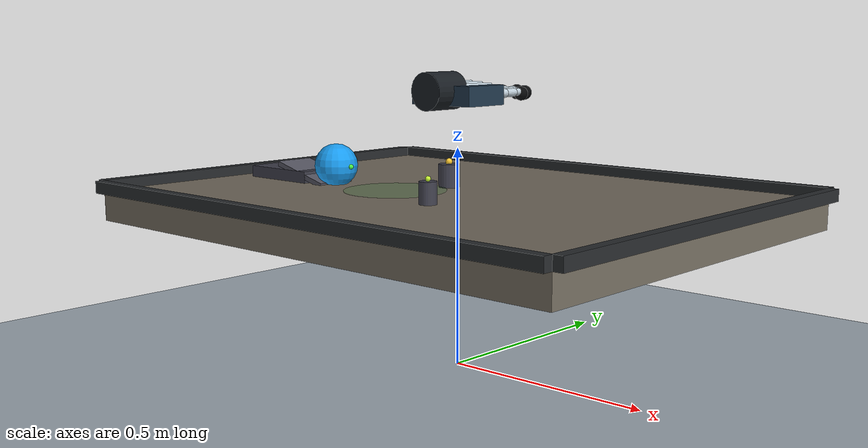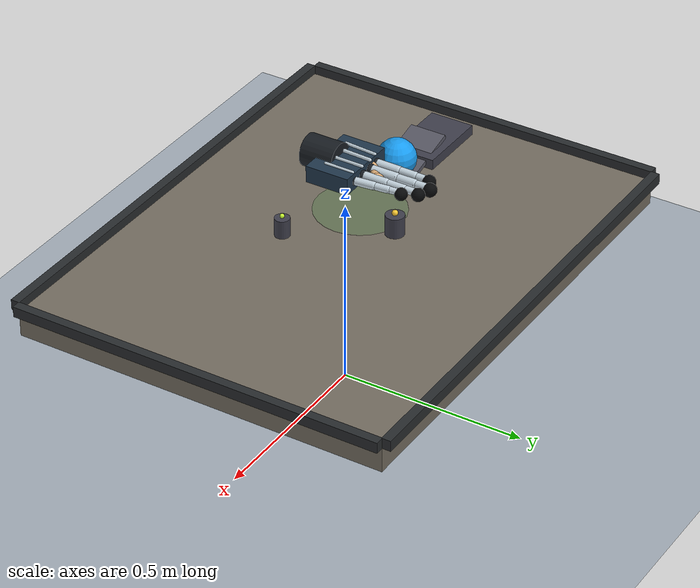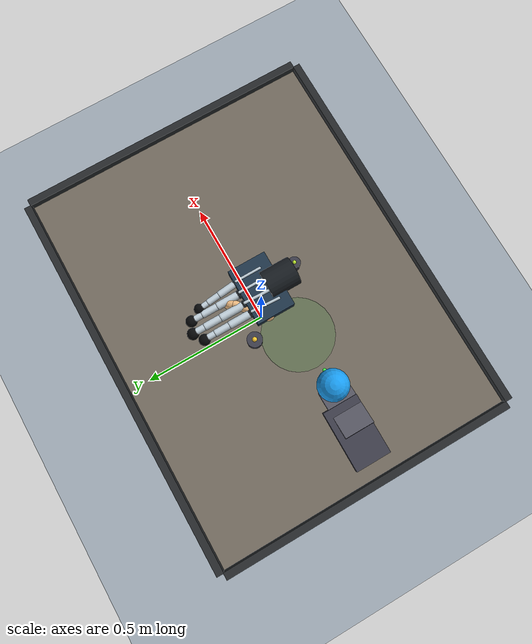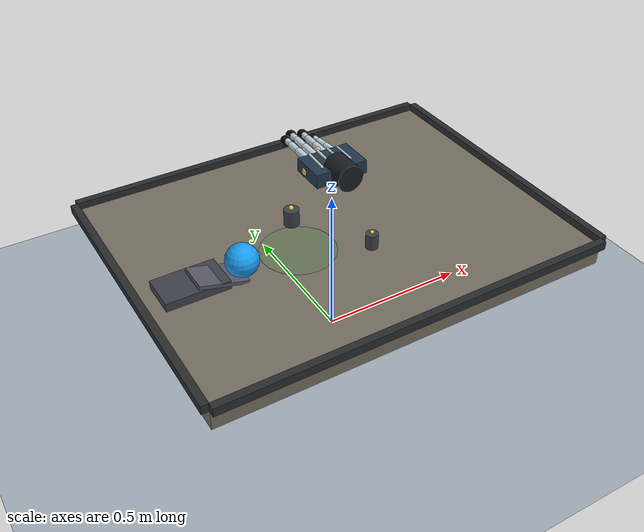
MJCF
<mujoco model="ball_catch">
  <!--
    Ball Catch - 接球任务专用场景
    特点：
    - 五指灵巧手
    - 发射器基座
    - 扩大的滚动区域
    - 优化滚动的摩擦参数
  -->

  <compiler angle="degree" autolimits="true"/>
  <option timestep="0.01" integrator="RK4" gravity="0 0 -9.81"/>

  <visual>
    <global offwidth="1280" offheight="720"/>
    <quality shadowsize="2048"/>
  </visual>

  <default>
    <geom friction="0.8 0.03 0.003" solimp="0.9 0.95 0.001" solref="0.02 1"/>
    <joint damping="5" armature="0.01"/>
  </default>

  <asset>
    <texture name="grid_tex" type="2d" builtin="checker" rgb1="0.84 0.86 0.88" rgb2="0.68 0.72 0.76" width="256" height="256"/>
    <material name="floor_mat" texture="grid_tex" texrepeat="5 5" rgba="0.84 0.86 0.88 1"/>
    <material name="table_mat" rgba="0.46 0.43 0.38 1"/>
    <material name="palm_mat" rgba="0.13 0.22 0.30 1"/>
    <material name="finger_mat" rgba="0.78 0.84 0.88 1"/>
    <material name="thumb_mat" rgba="0.92 0.72 0.50 1"/>
    <material name="finger_joint_mat" rgba="0.10 0.12 0.14 1"/>
    <material name="pad_mat" rgba="0.03 0.035 0.04 1"/>
    <material name="sphere_mat" rgba="0.10 0.62 0.95 1"/>
    <material name="launcher_mat" rgba="0.25 0.25 0.30 1"/>
    <material name="launcher_ramp_mat" rgba="0.35 0.35 0.40 1"/>
    <material name="trigger_mat" rgba="1.00 0.20 0.20 1"/>
  </asset>

  <worldbody>
    <!-- 地面 -->
    <geom name="floor" type="plane" size="2.0 2.0 0.05" material="floor_mat"/>

    <!-- 灯光 -->
    <light name="key_light" pos="0.0 -1.2 1.8" dir="0.0 0.4 -1" diffuse="0.95 0.95 0.92"/>
    <light name="fill_light" pos="-1.0 1.1 1.5" dir="0.5 -0.4 -1" diffuse="0.35 0.40 0.48"/>

    <!-- 摄像头 -->
    <camera name="front_camera" pos="0.36 -0.84 0.70" xyaxes="0.94 0.34 0 -0.16 0.45 0.88" fovy="36"/>
    <camera name="side_camera" pos="-0.50 -0.60 0.65" xyaxes="0.90 0.40 0.15 -0.12 0.42 0.90" fovy="32"/>
    <camera name="top_camera" pos="0.0 0.0 1.32" xyaxes="1 0 0 0 1 0" fovy="42"/>

    <!-- 桌面 - 扩大尺寸以容纳滚动 -->
    <body name="table" pos="0 0 0.36">
      <geom name="table_top" type="box" size="0.65 0.50 0.035" material="table_mat"/>
      <geom name="table_edge_front" type="box" pos="0 -0.51 0.045" size="0.65 0.012 0.014" rgba="0.16 0.17 0.18 1"/>
      <geom name="table_edge_back" type="box" pos="0 0.51 0.045" size="0.65 0.012 0.014" rgba="0.16 0.17 0.18 1"/>
      <geom name="table_edge_left" type="box" pos="-0.66 0 0.045" size="0.012 0.50 0.014" rgba="0.16 0.17 0.18 1"/>
      <geom name="table_edge_right" type="box" pos="0.66 0 0.045" size="0.012 0.50 0.014" rgba="0.16 0.17 0.18 1"/>
    </body>

    <!-- 球发射器基座 -->
    <body name="ball_launcher" pos="-0.50 -0.05 0.405">
      <geom name="launcher_base" type="box" size="0.10 0.06 0.018" material="launcher_mat"/>
      <geom name="launcher_ramp" type="box" pos="0.08 -0.01 0.010" euler="0 15 0" size="0.08 0.05 0.006" material="launcher_ramp_mat"/>
      <site name="launcher_trigger" pos="0.16 0 0.028" size="0.010" rgba="1.0 0.3 0.3 1"/>
    </body>

    <!-- 滚动球 - 低摩擦配置 -->
    <body name="sphere_object" pos="-0.34 -0.06 0.440">
      <freejoint name="sphere_object_joint"/>
      <geom name="sphere_object_geom" type="sphere" size="0.052" material="sphere_mat" mass="0.060" friction="0.5 0.015 0.001"/>
      <site name="ball_velocity_marker" pos="0.052 0 0" size="0.006" rgba="0.3 1.0 0.3 1"/>
    </body>

    <!-- 接球区域标记 -->
    <body name="catch_zone" pos="-0.15 -0.05 0.395">
      <geom name="catch_zone_geom" type="cylinder" size="0.12 0.002" rgba="0.20 0.60 0.20 0.15" contype="0" conaffinity="0"/>
    </body>

    <!-- 障碍物 - 球会碰撞并改变方向 -->
    <body name="obstacle_1" pos="-0.10 0.08 0.400">
      <geom name="obstacle_geom" type="cylinder" size="0.025 0.050" material="launcher_mat" friction="0.3 0.01 0.001"/>
      <site name="obstacle_marker" pos="0 0 0.055" size="0.008" rgba="1.0 0.8 0.2 1"/>
    </body>

    <!-- 障碍物2 - 更大范围 -->
    <body name="obstacle_2" pos="0.05 -0.15 0.400">
      <geom name="obstacle_2_geom" type="cylinder" size="0.020 0.045" material="launcher_mat" friction="0.3 0.01 0.001"/>
      <site name="obstacle_2_marker" pos="0 0 0.050" size="0.006" rgba="0.8 1.0 0.2 1"/>
    </body>

    <!-- 五指灵巧手 - 完整结构 -->
    <body name="palm_body" pos="0 0 0.620">
      <!-- 手部滑动关节 -->
      <joint name="hand_x" type="slide" axis="1 0 0" range="-0.40 0.40" damping="8"/>
      <joint name="hand_y" type="slide" axis="0 1 0" range="-0.22 0.34" damping="8"/>
      <joint name="hand_z" type="slide" axis="0 0 1" range="-0.13 0.06" damping="8"/>
      <!-- 手腕旋转关节 -->
      <joint name="wrist_yaw" type="hinge" axis="0 0 1" range="-35 35" damping="5"/>
      <joint name="wrist_pitch" type="hinge" axis="1 0 0" range="-25 25" damping="5"/>
      <joint name="wrist_roll" type="hinge" axis="0 1 0" range="-25 25" damping="5"/>

      <!-- 手掌结构 -->
      <geom name="wrist_mount_geom" type="cylinder" pos="0 -0.060 0.010" euler="90 0 0" size="0.042 0.045" material="finger_joint_mat" contype="0" conaffinity="0"/>
      <geom name="palm_geom" type="box" pos="0 0 0" size="0.085 0.058 0.022" material="palm_mat" contype="0" conaffinity="0"/>
      <geom name="index_metacarpal_rail" type="capsule" fromto="-0.050 -0.028 0.025 -0.045 0.055 0.024" size="0.004" material="finger_mat" contype="0" conaffinity="0"/>
      <geom name="middle_metacarpal_rail" type="capsule" fromto="-0.018 -0.032 0.026 -0.015 0.060 0.025" size="0.0045" material="finger_mat" contype="0" conaffinity="0"/>
      <geom name="ring_metacarpal_rail" type="capsule" fromto="0.018 -0.030 0.025 0.018 0.058 0.024" size="0.004" material="finger_mat" contype="0" conaffinity="0"/>
      <geom name="little_metacarpal_rail" type="capsule" fromto="0.050 -0.024 0.023 0.050 0.052 0.022" size="0.0038" material="finger_mat" contype="0" conaffinity="0"/>
      <site name="palm_center_site" pos="0 0.045 -0.020" size="0.008" rgba="1 0.9 0.2 1"/>

      <!-- 拇指 - 对掌结构 -->
      <body name="thumb_metacarpal" pos="-0.075 0.018 -0.004" euler="0 0 -48">
        <joint name="thumb_cmc_opposition" type="hinge" axis="-1 0 0" range="0 85" damping="4"/>
        <joint name="thumb_cmc_abduction" type="hinge" axis="0 0 1" range="-10 45" damping="4"/>
        <geom name="thumb_cmc_joint_geom" type="sphere" size="0.016" material="thumb_mat" contype="0" conaffinity="0"/>
        <geom name="thumb_proximal_geom" type="capsule" fromto="0 0 0 0 0.045 0" size="0.014" material="thumb_mat" contype="0" conaffinity="0"/>
        <body name="thumb_proximal" pos="0 0.045 0">
          <joint name="thumb_mcp_flexion" type="hinge" axis="-1 0 0" range="0 85" damping="4"/>
          <geom name="thumb_mcp_joint_geom" type="sphere" size="0.014" material="thumb_mat" contype="0" conaffinity="0"/>
          <geom name="thumb_middle_geom" type="capsule" fromto="0 0 0 0 0.039 0" size="0.013" material="thumb_mat" contype="0" conaffinity="0"/>
          <body name="thumb_distal" pos="0 0.039 0">
            <joint name="thumb_ip_flexion" type="hinge" axis="-1 0 0" range="0 80" damping="4"/>
            <geom name="thumb_ip_joint_geom" type="sphere" size="0.012" material="thumb_mat" contype="0" conaffinity="0"/>
            <geom name="thumb_distal_geom" type="capsule" fromto="0 0 0 0 0.028 0" size="0.012" material="thumb_mat" contype="0" conaffinity="0"/>
            <geom name="thumb_tip_pad" type="sphere" pos="0 0.032 -0.004" size="0.019" material="thumb_mat" contype="1" conaffinity="1"/>
            <site name="thumb_tip_site" pos="0 0.034 -0.004" size="0.006" rgba="1 1 1 1"/>
          </body>
        </body>
      </body>

      <!-- 食指 -->
      <body name="index_metacarpal" pos="-0.045 0.058 0.000">
        <joint name="index_mcp_abduction" type="hinge" axis="0 0 1" range="-16 16" damping="4"/>
        <joint name="index_mcp_flexion" type="hinge" axis="-1 0 0" range="0 95" damping="4"/>
        <geom name="index_mcp_joint_geom" type="sphere" size="0.013" material="finger_joint_mat" contype="0" conaffinity="0"/>
        <geom name="index_proximal_geom" type="capsule" fromto="0 0 0 0 0.065 0" size="0.0115" material="finger_mat" contype="0" conaffinity="0"/>
        <body name="index_middle" pos="0 0.065 0">
          <joint name="index_pip_flexion" type="hinge" axis="-1 0 0" range="0 100" damping="4"/>
          <geom name="index_pip_joint_geom" type="sphere" size="0.011" material="finger_joint_mat" contype="0" conaffinity="0"/>
          <geom name="index_middle_geom" type="capsule" fromto="0 0 0 0 0.046 0" size="0.0105" material="finger_mat" contype="0" conaffinity="0"/>
          <body name="index_distal" pos="0 0.046 0">
            <joint name="index_dip_flexion" type="hinge" axis="-1 0 0" range="0 85" damping="4"/>
            <geom name="index_dip_joint_geom" type="sphere" size="0.0095" material="finger_joint_mat" contype="0" conaffinity="0"/>
            <geom name="index_distal_geom" type="capsule" fromto="0 0 0 0 0.033 0" size="0.0095" material="finger_mat" contype="0" conaffinity="0"/>
            <geom name="index_tip_pad" type="sphere" pos="0 0.037 -0.004" size="0.017" material="pad_mat" contype="1" conaffinity="1"/>
            <site name="index_tip_site" pos="0 0.039 -0.004" size="0.006" rgba="1 1 1 1"/>
          </body>
        </body>
      </body>

      <!-- 中指 -->
      <body name="middle_metacarpal" pos="-0.015 0.062 0.000">
        <joint name="middle_mcp_abduction" type="hinge" axis="0 0 1" range="-12 12" damping="4"/>
        <joint name="middle_mcp_flexion" type="hinge" axis="-1 0 0" range="0 100" damping="4"/>
        <geom name="middle_mcp_joint_geom" type="sphere" size="0.0135" material="finger_joint_mat" contype="0" conaffinity="0"/>
        <geom name="middle_proximal_geom" type="capsule" fromto="0 0 0 0 0.072 0" size="0.012" material="finger_mat" contype="0" conaffinity="0"/>
        <body name="middle_middle" pos="0 0.072 0">
          <joint name="middle_pip_flexion" type="hinge" axis="-1 0 0" range="0 105" damping="4"/>
          <geom name="middle_pip_joint_geom" type="sphere" size="0.0115" material="finger_joint_mat" contype="0" conaffinity="0"/>
          <geom name="middle_middle_geom" type="capsule" fromto="0 0 0 0 0.051 0" size="0.011" material="finger_mat" contype="0" conaffinity="0"/>
          <body name="middle_distal" pos="0 0.051 0">
            <joint name="middle_dip_flexion" type="hinge" axis="-1 0 0" range="0 90" damping="4"/>
            <geom name="middle_dip_joint_geom" type="sphere" size="0.010" material="finger_joint_mat" contype="0" conaffinity="0"/>
            <geom name="middle_distal_geom" type="capsule" fromto="0 0 0 0 0.037 0" size="0.010" material="finger_mat" contype="0" conaffinity="0"/>
            <geom name="middle_tip_pad" type="sphere" pos="0 0.041 -0.004" size="0.0175" material="pad_mat" contype="1" conaffinity="1"/>
            <site name="middle_tip_site" pos="0 0.043 -0.004" size="0.006" rgba="1 1 1 1"/>
          </body>
        </body>
      </body>

      <!-- 无名指 -->
      <body name="ring_metacarpal" pos="0.018 0.060 0.000">
        <joint name="ring_mcp_abduction" type="hinge" axis="0 0 1" range="-12 14" damping="4"/>
        <joint name="ring_mcp_flexion" type="hinge" axis="-1 0 0" range="0 98" damping="4"/>
        <geom name="ring_mcp_joint_geom" type="sphere" size="0.013" material="finger_joint_mat" contype="0" conaffinity="0"/>
        <geom name="ring_proximal_geom" type="capsule" fromto="0 0 0 0 0.067 0" size="0.0115" material="finger_mat" contype="0" conaffinity="0"/>
        <body name="ring_middle" pos="0 0.067 0">
          <joint name="ring_pip_flexion" type="hinge" axis="-1 0 0" range="0 102" damping="4"/>
          <geom name="ring_pip_joint_geom" type="sphere" size="0.011" material="finger_joint_mat" contype="0" conaffinity="0"/>
          <geom name="ring_middle_geom" type="capsule" fromto="0 0 0 0 0.048 0" size="0.0105" material="finger_mat" contype="0" conaffinity="0"/>
          <body name="ring_distal" pos="0 0.048 0">
            <joint name="ring_dip_flexion" type="hinge" axis="-1 0 0" range="0 88" damping="4"/>
            <geom name="ring_dip_joint_geom" type="sphere" size="0.0095" material="finger_joint_mat" contype="0" conaffinity="0"/>
            <geom name="ring_distal_geom" type="capsule" fromto="0 0 0 0 0.034 0" size="0.0095" material="finger_mat" contype="0" conaffinity="0"/>
            <geom name="ring_tip_pad" type="sphere" pos="0 0.038 -0.004" size="0.017" material="pad_mat" contype="1" conaffinity="1"/>
            <site name="ring_tip_site" pos="0 0.040 -0.004" size="0.006" rgba="1 1 1 1"/>
          </body>
        </body>
      </body>

      <!-- 小指 -->
      <body name="little_metacarpal" pos="0.050 0.054 0.000" euler="0 0 6">
        <joint name="little_mcp_abduction" type="hinge" axis="0 0 1" range="-14 18" damping="4"/>
        <joint name="little_mcp_flexion" type="hinge" axis="-1 0 0" range="0 96" damping="4"/>
        <geom name="little_mcp_joint_geom" type="sphere" size="0.012" material="finger_joint_mat" contype="0" conaffinity="0"/>
        <geom name="little_proximal_geom" type="capsule" fromto="0 0 0 0 0.054 0" size="0.0105" material="finger_mat" contype="0" conaffinity="0"/>
        <body name="little_middle" pos="0 0.054 0">
          <joint name="little_pip_flexion" type="hinge" axis="-1 0 0" range="0 100" damping="4"/>
          <geom name="little_pip_joint_geom" type="sphere" size="0.010" material="finger_joint_mat" contype="0" conaffinity="0"/>
          <geom name="little_middle_geom" type="capsule" fromto="0 0 0 0 0.038 0" size="0.0095" material="finger_mat" contype="0" conaffinity="0"/>
          <body name="little_distal" pos="0 0.038 0">
            <joint name="little_dip_flexion" type="hinge" axis="-1 0 0" range="0 85" damping="4"/>
            <geom name="little_dip_joint_geom" type="sphere" size="0.0085" material="finger_joint_mat" contype="0" conaffinity="0"/>
            <geom name="little_distal_geom" type="capsule" fromto="0 0 0 0 0.028 0" size="0.0085" material="finger_mat" contype="0" conaffinity="0"/>
            <geom name="little_tip_pad" type="sphere" pos="0 0.032 -0.004" size="0.016" material="pad_mat" contype="1" conaffinity="1"/>
            <site name="little_tip_site" pos="0 0.034 -0.004" size="0.006" rgba="1 1 1 1"/>
          </body>
        </body>
      </body>
    </body>
  </worldbody>

  <!-- 触觉传感器 -->
  <sensor>
    <touch name="touch_thumb_tip" site="thumb_tip_site"/>
    <touch name="touch_index_tip" site="index_tip_site"/>
    <touch name="touch_middle_tip" site="middle_tip_site"/>
    <touch name="touch_ring_tip" site="ring_tip_site"/>
    <touch name="touch_little_tip" site="little_tip_site"/>
  </sensor>

  <!-- 执行器 -->
  <actuator>
    <!-- 手部滑动执行器 -->
    <position name="act_hand_x" joint="hand_x" kp="160" ctrlrange="-0.40 0.40"/>
    <position name="act_hand_y" joint="hand_y" kp="160" ctrlrange="-0.22 0.34"/>
    <position name="act_hand_z" joint="hand_z" kp="160" ctrlrange="-0.13 0.06"/>
    <!-- 手腕执行器 -->
    <position name="act_wrist_yaw" joint="wrist_yaw" kp="80" ctrlrange="-0.6109 0.6109"/>
    <position name="act_wrist_pitch" joint="wrist_pitch" kp="80" ctrlrange="-0.4363 0.4363"/>
    <position name="act_wrist_roll" joint="wrist_roll" kp="80" ctrlrange="-0.4363 0.4363"/>
    <!-- 拇指执行器 -->
    <position name="act_thumb_cmc_opposition" joint="thumb_cmc_opposition" kp="65" ctrlrange="0 1.4835"/>
    <position name="act_thumb_cmc_abduction" joint="thumb_cmc_abduction" kp="65" ctrlrange="-0.1745 0.7854"/>
    <position name="act_thumb_mcp_flexion" joint="thumb_mcp_flexion" kp="65" ctrlrange="0 1.4835"/>
    <position name="act_thumb_ip_flexion" joint="thumb_ip_flexion" kp="65" ctrlrange="0 1.3963"/>
    <!-- 食指执行器 -->
    <position name="act_index_mcp_abduction" joint="index_mcp_abduction" kp="65" ctrlrange="-0.2793 0.2793"/>
    <position name="act_index_mcp_flexion" joint="index_mcp_flexion" kp="65" ctrlrange="0 1.6581"/>
    <position name="act_index_pip_flexion" joint="index_pip_flexion" kp="65" ctrlrange="0 1.7453"/>
    <position name="act_index_dip_flexion" joint="index_dip_flexion" kp="65" ctrlrange="0 1.4835"/>
    <!-- 中指执行器 -->
    <position name="act_middle_mcp_abduction" joint="middle_mcp_abduction" kp="65" ctrlrange="-0.2094 0.2094"/>
    <position name="act_middle_mcp_flexion" joint="middle_mcp_flexion" kp="65" ctrlrange="0 1.7453"/>
    <position name="act_middle_pip_flexion" joint="middle_pip_flexion" kp="65" ctrlrange="0 1.8326"/>
    <position name="act_middle_dip_flexion" joint="middle_dip_flexion" kp="65" ctrlrange="0 1.5708"/>
    <!-- 无名指执行器 -->
    <position name="act_ring_mcp_abduction" joint="ring_mcp_abduction" kp="65" ctrlrange="-0.2094 0.2443"/>
    <position name="act_ring_mcp_flexion" joint="ring_mcp_flexion" kp="65" ctrlrange="0 1.7104"/>
    <position name="act_ring_pip_flexion" joint="ring_pip_flexion" kp="65" ctrlrange="0 1.7802"/>
    <position name="act_ring_dip_flexion" joint="ring_dip_flexion" kp="65" ctrlrange="0 1.5359"/>
    <!-- 小指执行器 -->
    <position name="act_little_mcp_abduction" joint="little_mcp_abduction" kp="65" ctrlrange="-0.2443 0.3142"/>
    <position name="act_little_mcp_flexion" joint="little_mcp_flexion" kp="65" ctrlrange="0 1.6755"/>
    <position name="act_little_pip_flexion" joint="little_pip_flexion" kp="65" ctrlrange="0 1.7453"/>
    <position name="act_little_dip_flexion" joint="little_dip_flexion" kp="65" ctrlrange="0 1.4835"/>
  </actuator>
</mujoco>
